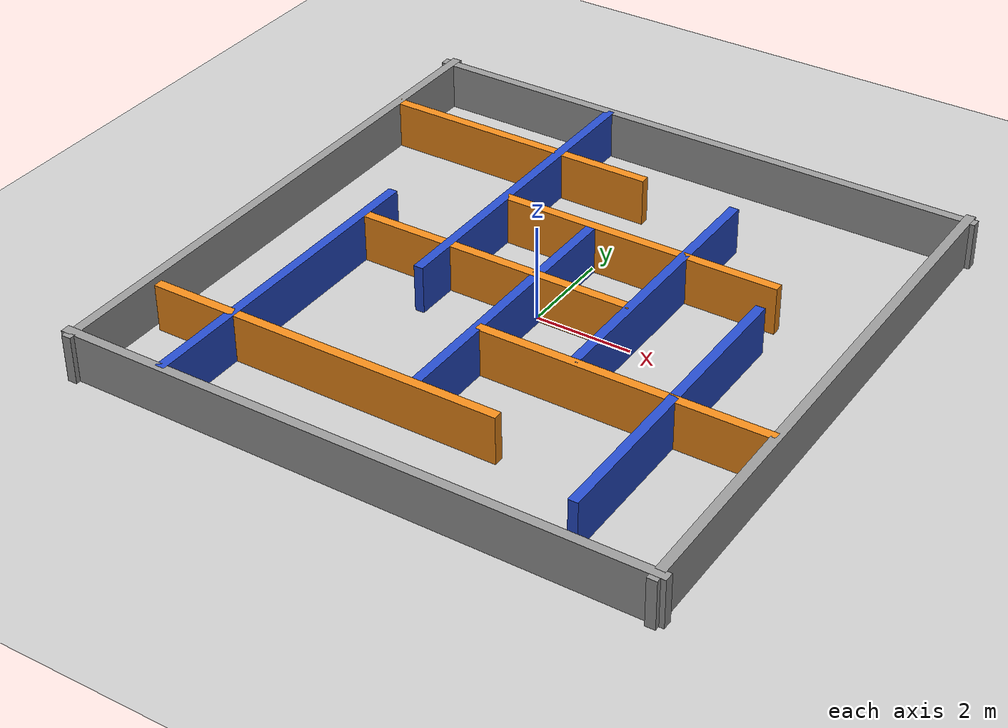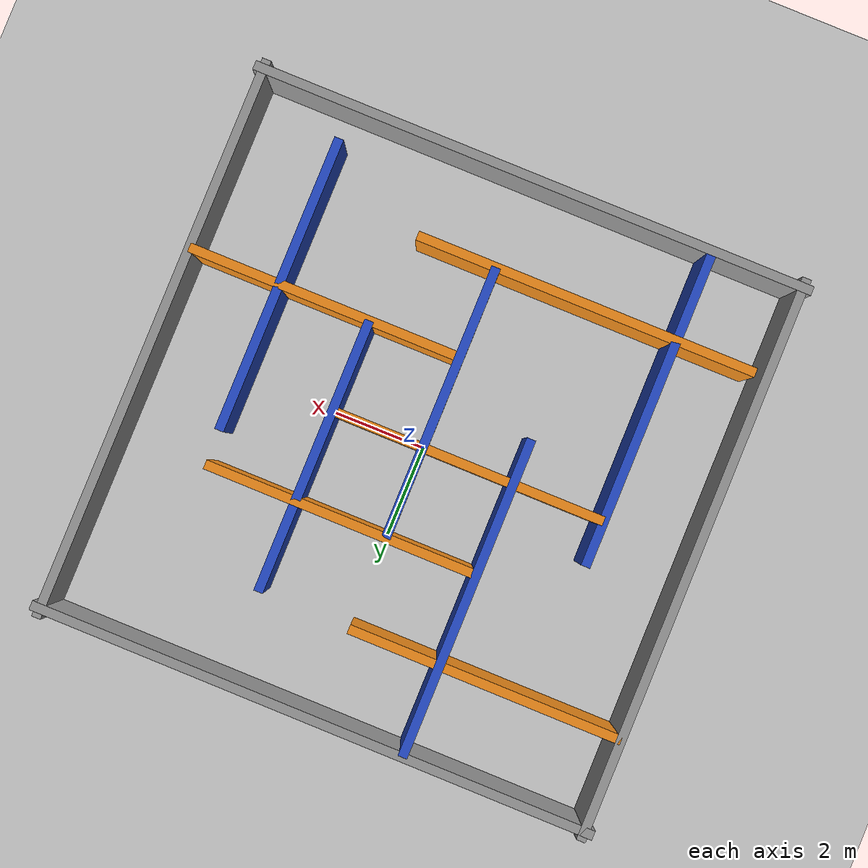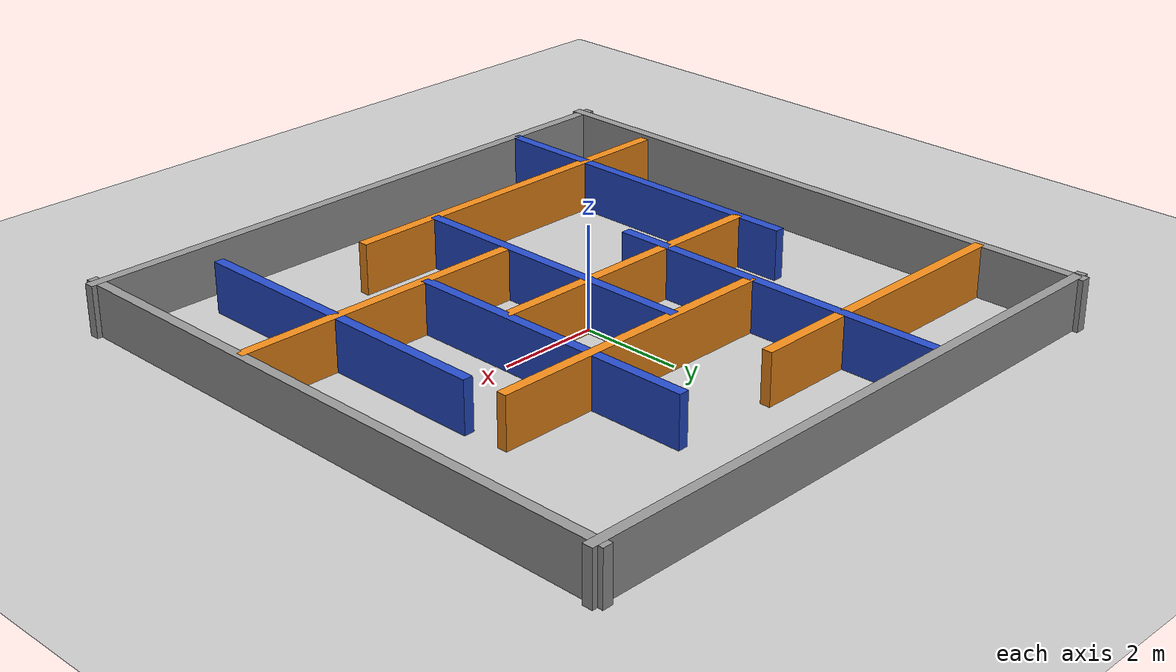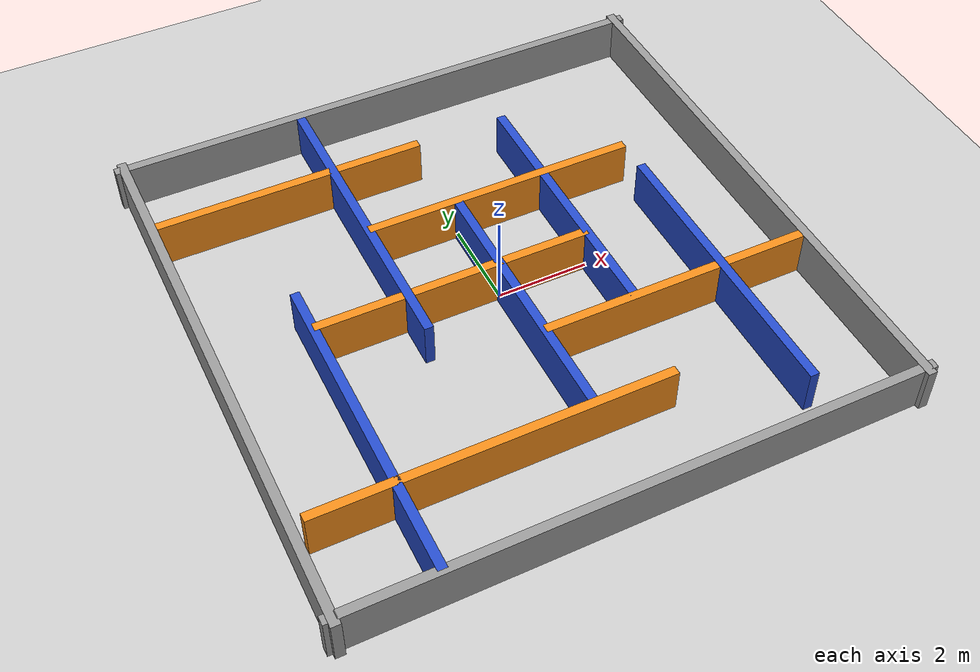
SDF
<?xml version="1.0" ?>
<sdf version="1.5">
    <!-- 12m x 12m maze terrain (centered at origin). -->
    <world name="maze_terrain">

        <physics type="ode">
            <max_step_size>0.0005</max_step_size>
            <real_time_factor>1</real_time_factor>
            <real_time_update_rate>2000</real_time_update_rate>
            <gravity>0 0 -9.81</gravity>
            <ode>
                <solver>
                    <type>quick</type>
                    <iters>50</iters>
                    <sor>1.3</sor>
                </solver>
                <constraints>
                    <cfm>0.0</cfm>
                    <erp>0.2</erp>
                    <contact_max_correcting_vel>10.0</contact_max_correcting_vel>
                    <contact_surface_layer>0.001</contact_surface_layer>
                </constraints>
            </ode>
        </physics>

        <scene>
            <sky>
                <clouds>
                    <speed>12</speed>
                </clouds>
            </sky>
        </scene>

        <!-- A global light source -->
        <include>
            <uri>model://sun</uri>
        </include>

        <!-- A ground plane -->
        <include>
            <uri>model://ground_plane</uri>
        </include>

        <!-- Maze walls (static). Coordinates: x forward, y left. -->
        <model name="static_environment">
            <static>true</static>

            <!-- Common wall parameters (informational):
                 - thickness: 0.20m
                 - height:    1.00m
                 - terrain size: 12m x 12m (x,y in [-6, 6])
            -->

            <!-- Outer boundary -->
            <link name="wall_outer_x_pos">
                <pose>6.0 0.0 0.5 0 0 0</pose>
                <collision name="col">
                    <geometry><box><size>0.20 12.40 1.00</size></box></geometry>
                </collision>
                <visual name="vis">
                    <geometry><box><size>0.20 12.40 1.00</size></box></geometry>
                    <material><script><uri>file://media/materials/scripts/gazebo.material</uri><name>Gazebo/Grey</name></script></material>
                </visual>
            </link>
            <link name="wall_outer_x_neg">
                <pose>-6.0 0.0 0.5 0 0 0</pose>
                <collision name="col">
                    <geometry><box><size>0.20 12.40 1.00</size></box></geometry>
                </collision>
                <visual name="vis">
                    <geometry><box><size>0.20 12.40 1.00</size></box></geometry>
                    <material><script><uri>file://media/materials/scripts/gazebo.material</uri><name>Gazebo/Grey</name></script></material>
                </visual>
            </link>
            <link name="wall_outer_y_pos">
                <pose>0.0 6.0 0.5 0 0 0</pose>
                <collision name="col">
                    <geometry><box><size>12.40 0.20 1.00</size></box></geometry>
                </collision>
                <visual name="vis">
                    <geometry><box><size>12.40 0.20 1.00</size></box></geometry>
                    <material><script><uri>file://media/materials/scripts/gazebo.material</uri><name>Gazebo/Grey</name></script></material>
                </visual>
            </link>
            <link name="wall_outer_y_neg">
                <pose>0.0 -6.0 0.5 0 0 0</pose>
                <collision name="col">
                    <geometry><box><size>12.40 0.20 1.00</size></box></geometry>
                </collision>
                <visual name="vis">
                    <geometry><box><size>12.40 0.20 1.00</size></box></geometry>
                    <material><script><uri>file://media/materials/scripts/gazebo.material</uri><name>Gazebo/Grey</name></script></material>
                </visual>
            </link>

            <!-- Interior maze (hand-crafted). Corridor width ~1.2m. -->
            <!-- Vertical segments -->
            <link name="wall_v_1">
                <pose>-4.0 -2.5 0.5 0 0 0</pose>
                <collision name="col"><geometry><box><size>0.20 7.00 1.00</size></box></geometry></collision>
                <visual name="vis"><geometry><box><size>0.20 7.00 1.00</size></box></geometry><material><script><uri>file://media/materials/scripts/gazebo.material</uri><name>Gazebo/Blue</name></script></material></visual>
            </link>
            <link name="wall_v_2">
                <pose>-2.0 2.5 0.5 0 0 0</pose>
                <collision name="col"><geometry><box><size>0.20 7.00 1.00</size></box></geometry></collision>
                <visual name="vis"><geometry><box><size>0.20 7.00 1.00</size></box></geometry><material><script><uri>file://media/materials/scripts/gazebo.material</uri><name>Gazebo/Blue</name></script></material></visual>
            </link>
            <link name="wall_v_3">
                <pose>0.0 -1.0 0.5 0 0 0</pose>
                <collision name="col"><geometry><box><size>0.20 6.00 1.00</size></box></geometry></collision>
                <visual name="vis"><geometry><box><size>0.20 6.00 1.00</size></box></geometry><material><script><uri>file://media/materials/scripts/gazebo.material</uri><name>Gazebo/Blue</name></script></material></visual>
            </link>
            <link name="wall_v_4">
                <pose>2.0 1.0 0.5 0 0 0</pose>
                <collision name="col"><geometry><box><size>0.20 6.00 1.00</size></box></geometry></collision>
                <visual name="vis"><geometry><box><size>0.20 6.00 1.00</size></box></geometry><material><script><uri>file://media/materials/scripts/gazebo.material</uri><name>Gazebo/Blue</name></script></material></visual>
            </link>
            <link name="wall_v_5">
                <pose>4.0 -2.0 0.5 0 0 0</pose>
                <collision name="col"><geometry><box><size>0.20 6.50 1.00</size></box></geometry></collision>
                <visual name="vis"><geometry><box><size>0.20 6.50 1.00</size></box></geometry><material><script><uri>file://media/materials/scripts/gazebo.material</uri><name>Gazebo/Blue</name></script></material></visual>
            </link>

            <!-- Horizontal segments -->
            <link name="wall_h_1">
                <pose>-3.0 4.0 0.5 0 0 0</pose>
                <collision name="col"><geometry><box><size>6.00 0.20 1.00</size></box></geometry></collision>
                <visual name="vis"><geometry><box><size>6.00 0.20 1.00</size></box></geometry><material><script><uri>file://media/materials/scripts/gazebo.material</uri><name>Gazebo/Orange</name></script></material></visual>
            </link>
            <link name="wall_h_2">
                <pose>1.0 2.0 0.5 0 0 0</pose>
                <collision name="col"><geometry><box><size>6.00 0.20 1.00</size></box></geometry></collision>
                <visual name="vis"><geometry><box><size>6.00 0.20 1.00</size></box></geometry><material><script><uri>file://media/materials/scripts/gazebo.material</uri><name>Gazebo/Orange</name></script></material></visual>
            </link>
            <link name="wall_h_3">
                <pose>-1.0 0.0 0.5 0 0 0</pose>
                <collision name="col"><geometry><box><size>6.00 0.20 1.00</size></box></geometry></collision>
                <visual name="vis"><geometry><box><size>6.00 0.20 1.00</size></box></geometry><material><script><uri>file://media/materials/scripts/gazebo.material</uri><name>Gazebo/Orange</name></script></material></visual>
            </link>
            <link name="wall_h_4">
                <pose>3.0 -2.0 0.5 0 0 0</pose>
                <collision name="col"><geometry><box><size>6.00 0.20 1.00</size></box></geometry></collision>
                <visual name="vis"><geometry><box><size>6.00 0.20 1.00</size></box></geometry><material><script><uri>file://media/materials/scripts/gazebo.material</uri><name>Gazebo/Orange</name></script></material></visual>
            </link>
            <link name="wall_h_5">
                <pose>-2.0 -4.0 0.5 0 0 0</pose>
                <collision name="col"><geometry><box><size>7.50 0.20 1.00</size></box></geometry></collision>
                <visual name="vis"><geometry><box><size>7.50 0.20 1.00</size></box></geometry><material><script><uri>file://media/materials/scripts/gazebo.material</uri><name>Gazebo/Orange</name></script></material></visual>
            </link>
        </model>
    </world>
</sdf>
